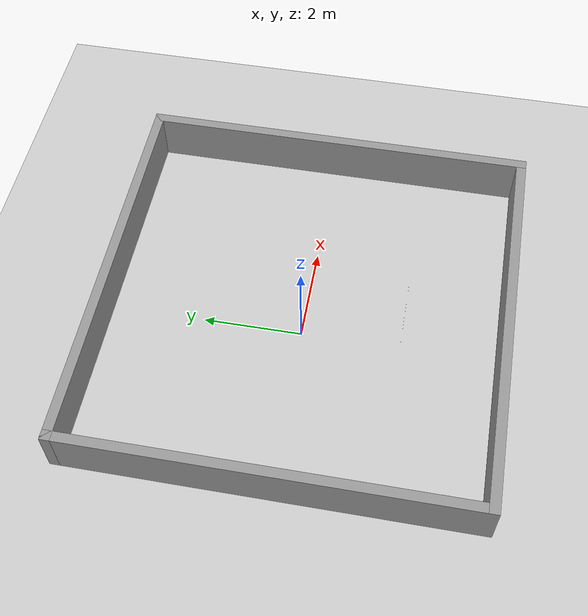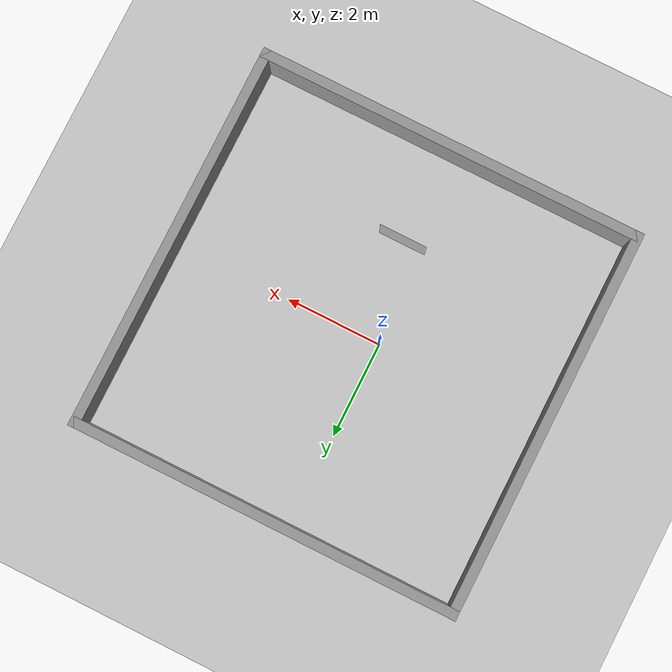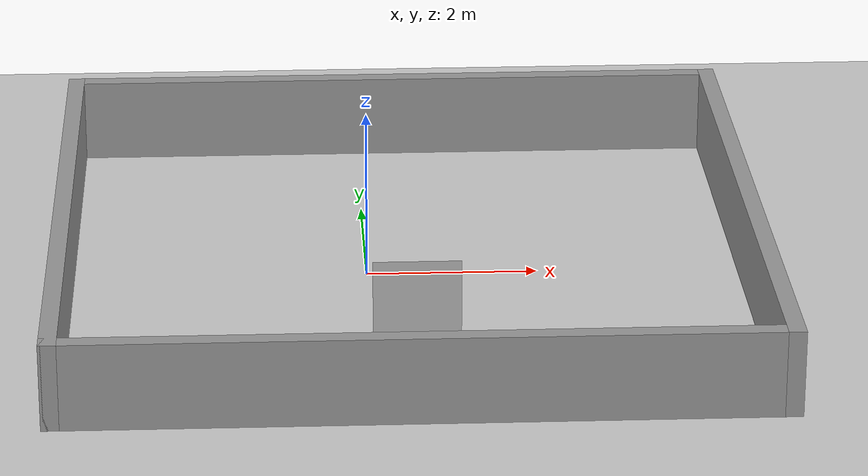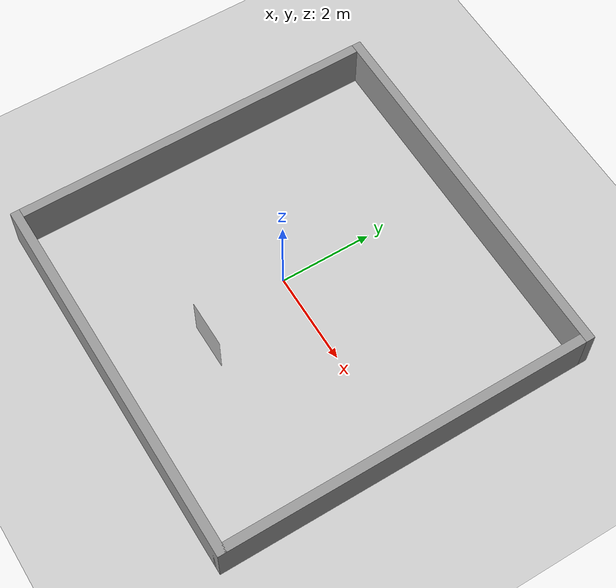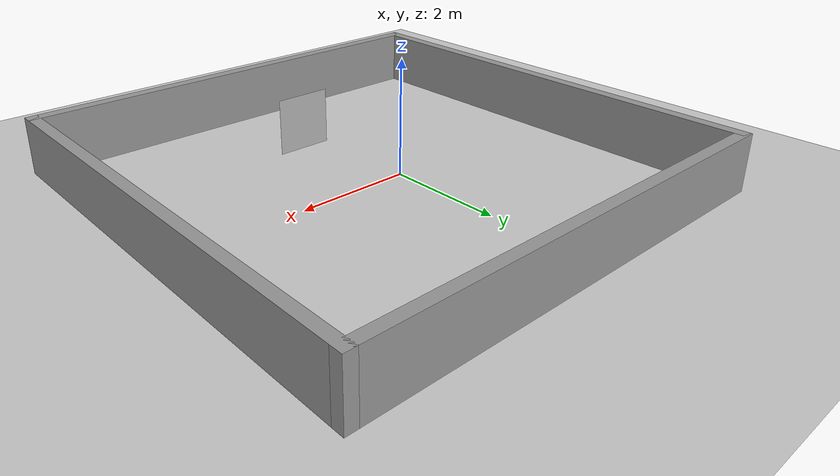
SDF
<sdf version="1.4">
 <world name="default">
  <light name="sun" type="directional">
   <pose>0 0 10 0 -0 0</pose>
   <diffuse>0.8 0.8 0.8 1</diffuse>
   <specular>0.2 0.2 0.2 1</specular>
   <attenuation>
    <range>1000</range>
    <constant>0.9</constant>
    <linear>0.01</linear>
    <quadratic>0.001</quadratic>
   </attenuation>
   <direction>-0.5 0.1 -0.9</direction>
  </light>
  <model name="ground_plane">
   <static>1</static>
   <link name="link">
    <collision name="collision">
     <geometry><plane><normal>0 0 1</normal><size>100 100</size></plane></geometry>
     <surface><friction><ode><mu>100</mu><mu2>50</mu2></ode></friction></surface>
    </collision>
    <visual name="visual">
     <cast_shadows>0</cast_shadows>
     <geometry><plane><normal>0 0 1</normal><size>100 100</size></plane></geometry>
     <material>
      <script><uri>file://media/materials/scripts/gazebo.material</uri><name>Gazebo/Grey</name></script>
     </material>
    </visual>
    <velocity_decay><linear>0</linear><angular>0</angular></velocity_decay>
   </link>
  </model>
  <physics type="ode">
   <max_step_size>0.001</max_step_size>
   <real_time_factor>1</real_time_factor>
   <real_time_update_rate>1000</real_time_update_rate>
   <gravity>0 0 -9.8</gravity>
  </physics>
  <scene><ambient>0.4 0.4 0.4 1</ambient><background>0.7 0.7 0.7 1</background><shadows>1</shadows></scene>
  <spherical_coordinates>
   <surface_model>EARTH_WGS84</surface_model>
   <latitude_deg>0</latitude_deg>
   <longitude_deg>0</longitude_deg>
   <elevation>0</elevation>
   <heading_deg>0</heading_deg>
  </spherical_coordinates>
  <model name="wall_test1_0">
   <link name="Wall_0">
    <collision name="Wall_0_Collision">
     <geometry><box><size>8.2 0.2 1</size></box></geometry>
     <pose>0 0 0.5 0 -0 0</pose>
    </collision>
    <visual name="Wall_0_Visual">
     <pose>0 0 0.5 0 -0 0</pose>
     <geometry><box><size>8.2 0.2 1</size></box></geometry>
     <material>
      <script><uri>file://media/materials/scripts/gazebo.material</uri><name>Gazebo/Grey</name></script>
     </material>
    </visual>
    <velocity_decay><linear>0</linear><angular>0</angular></velocity_decay>
    <pose>0 -4 0 0 -0 0</pose>
   </link>
   <link name="Wall_1">
    <collision name="Wall_1_Collision">
     <geometry><box><size>8.2 0.2 1</size></box></geometry>
     <pose>0 0 0.5 0 -0 0</pose>
    </collision>
    <visual name="Wall_1_Visual">
     <pose>0 0 0.5 0 -0 0</pose>
     <geometry><box><size>8.2 0.2 1</size></box></geometry>
     <material>
      <script><uri>file://media/materials/scripts/gazebo.material</uri><name>Gazebo/Grey</name></script>
     </material>
    </visual>
    <velocity_decay><linear>0</linear><angular>0</angular></velocity_decay>
    <pose>4 0 0 0 -0 1.5708</pose>
   </link>
   <link name="Wall_2">
    <collision name="Wall_2_Collision">
     <geometry><box><size>8.2 0.2 1</size></box></geometry>
     <pose>0 0 0.5 0 -0 0</pose>
    </collision>
    <visual name="Wall_2_Visual">
     <pose>0 0 0.5 0 -0 0</pose>
     <geometry><box><size>8.2 0.2 1</size></box></geometry>
     <material>
      <script><uri>file://media/materials/scripts/gazebo.material</uri><name>Gazebo/Grey</name></script>
     </material>
    </visual>
    <velocity_decay><linear>0</linear><angular>0</angular></velocity_decay>
    <pose>0 4 0 0 -0 3.14159</pose>
   </link>
   <link name="Wall_3">
    <collision name="Wall_3_Collision">
     <geometry><box><size>8.2 0.2 1</size></box></geometry>
     <pose>0 0 0.5 0 -0 0</pose>
    </collision>
    <visual name="Wall_3_Visual">
     <pose>0 0 0.5 0 -0 0</pose>
     <geometry><box><size>8.2 0.2 1</size></box></geometry>
     <material>
      <script><uri>file://media/materials/scripts/gazebo.material</uri><name>Gazebo/Grey</name></script>
     </material>
    </visual>
    <velocity_decay><linear>0</linear><angular>0</angular></velocity_decay>
    <pose>-4 0 0 0 0 -1.5708</pose>
   </link>
   <static>1</static>
   <pose>0.469055 0 0 0 -0 0</pose>
  </model>
  <model name="BuildingDefaultName">
   <link name="Wall_0">
    <collision name="Wall_0_Collision">
     <geometry><box><size>1 0 1</size></box></geometry>
     <pose>0 0 0.5 0 -0 0</pose>
    </collision>
    <visual name="Wall_0_Visual">
     <pose>0 0 0.5 0 -0 0</pose>
     <geometry><box><size>1 0 1</size></box></geometry>
     <material>
      <script>
       <uri>model://A_Calib_7_7/materials/scripts</uri>
       <uri>model://A_Calib_7_7/materials/textures</uri>
       <name>cal/Calib7</name>
      </script>
     </material>
    </visual>
    <velocity_decay><linear>0</linear><angular>0</angular></velocity_decay>
    <pose>0.5 0 0 0 -0 0</pose>
   </link>
   <static>1</static>
   <pose>0 -2 0 0 -0 0</pose>
  </model>
 </world>
</sdf>
